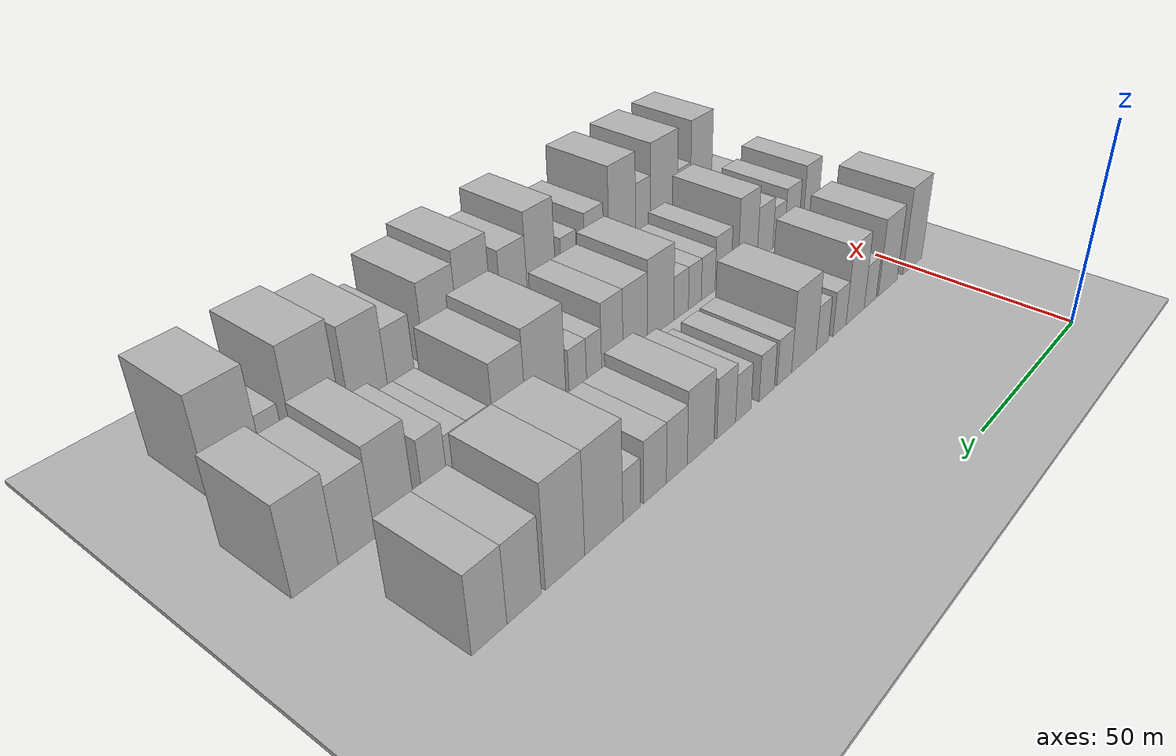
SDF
<sdf version="1.6">
 <world name="default">
  <include><name>ground_plane_1</name><uri>model://HANNAS_ground_plane</uri></include>
  <include>
   <name>ground_plane_2</name>
   <uri>model://HANNAS_ground_plane</uri>
   <pose>100 0 0  0 0 0</pose>
  </include>
  <model name="building_40">
   <static>1</static>
   <pose>50.0000 0.5116 0 0.000000 0.000000 0.000000</pose>
   <link name="link">
    <pose>0 0 12.00 0 0 0</pose>
    <collision name="collision"><geometry><box><size>20.0000 10.1865 24.0000</size></box></geometry></collision>
    <visual name="visual">
     <cast_shadows>0</cast_shadows>
     <geometry><box><size>20.0000 10.1865 24.0000</size></box></geometry>
     <material>
      <script>
       <uri>model://HANNAS_wall/materials/scripts</uri>
       <uri>model://HANNAS_wall/materials/textures</uri>
       <name>vrc/HANNAS_wall</name>
      </script>
     </material>
    </visual>
   </link>
  </model>
  <model name="building_41">
   <static>1</static>
   <pose>50.0000 13.3730 0 0.000000 0.000000 0.000000</pose>
   <link name="link">
    <pose>0 0 10.50 0 0 0</pose>
    <collision name="collision"><geometry><box><size>20.0000 9.5363 21.0000</size></box></geometry></collision>
    <visual name="visual">
     <cast_shadows>0</cast_shadows>
     <geometry><box><size>20.0000 9.5363 21.0000</size></box></geometry>
     <material>
      <script>
       <uri>model://HANNAS_wall/materials/scripts</uri>
       <uri>model://HANNAS_wall/materials/textures</uri>
       <name>vrc/HANNAS_wall</name>
      </script>
     </material>
    </visual>
   </link>
  </model>
  <model name="building_42">
   <static>1</static>
   <pose>50.0000 22.0868 0 0.000000 0.000000 0.000000</pose>
   <link name="link">
    <pose>0 0 6.00 0 0 0</pose>
    <collision name="collision"><geometry><box><size>20.0000 5.8913 12.0000</size></box></geometry></collision>
    <visual name="visual">
     <cast_shadows>0</cast_shadows>
     <geometry><box><size>20.0000 5.8913 12.0000</size></box></geometry>
     <material>
      <script>
       <uri>model://HANNAS_wall/materials/scripts</uri>
       <uri>model://HANNAS_wall/materials/textures</uri>
       <name>vrc/HANNAS_wall</name>
      </script>
     </material>
    </visual>
   </link>
  </model>
  <model name="building_43">
   <static>1</static>
   <pose>50.0000 29.2545 0 0.000000 0.000000 0.000000</pose>
   <link name="link">
    <pose>0 0 10.50 0 0 0</pose>
    <collision name="collision"><geometry><box><size>20.0000 8.4440 21.0000</size></box></geometry></collision>
    <visual name="visual">
     <cast_shadows>0</cast_shadows>
     <geometry><box><size>20.0000 8.4440 21.0000</size></box></geometry>
     <material>
      <script>
       <uri>model://HANNAS_wall/materials/scripts</uri>
       <uri>model://HANNAS_wall/materials/textures</uri>
       <name>vrc/HANNAS_wall</name>
      </script>
     </material>
    </visual>
   </link>
  </model>
  <model name="building_44">
   <static>1</static>
   <pose>50.0000 36.4297 0 0.000000 0.000000 0.000000</pose>
   <link name="link">
    <pose>0 0 6.00 0 0 0</pose>
    <collision name="collision"><geometry><box><size>20.0000 5.9065 12.0000</size></box></geometry></collision>
    <visual name="visual">
     <cast_shadows>0</cast_shadows>
     <geometry><box><size>20.0000 5.9065 12.0000</size></box></geometry>
     <material>
      <script>
       <uri>model://HANNAS_wall/materials/scripts</uri>
       <uri>model://HANNAS_wall/materials/textures</uri>
       <name>vrc/HANNAS_wall</name>
      </script>
     </material>
    </visual>
   </link>
  </model>
  <model name="building_45">
   <static>1</static>
   <pose>50.0000 44.0277 0 0.000000 0.000000 0.000000</pose>
   <link name="link">
    <pose>0 0 6.00 0 0 0</pose>
    <collision name="collision"><geometry><box><size>20.0000 5.2894 12.0000</size></box></geometry></collision>
    <visual name="visual">
     <cast_shadows>0</cast_shadows>
     <geometry><box><size>20.0000 5.2894 12.0000</size></box></geometry>
     <material>
      <script>
       <uri>model://HANNAS_wall/materials/scripts</uri>
       <uri>model://HANNAS_wall/materials/textures</uri>
       <name>vrc/HANNAS_wall</name>
      </script>
     </material>
    </visual>
   </link>
  </model>
  <model name="building_46">
   <static>1</static>
   <pose>50.0000 51.8122 0 0.000000 0.000000 0.000000</pose>
   <link name="link">
    <pose>0 0 10.50 0 0 0</pose>
    <collision name="collision"><geometry><box><size>20.0000 10.2796 21.0000</size></box></geometry></collision>
    <visual name="visual">
     <cast_shadows>0</cast_shadows>
     <geometry><box><size>20.0000 10.2796 21.0000</size></box></geometry>
     <material>
      <script>
       <uri>model://HANNAS_wall/materials/scripts</uri>
       <uri>model://HANNAS_wall/materials/textures</uri>
       <name>vrc/HANNAS_wall</name>
      </script>
     </material>
    </visual>
   </link>
  </model>
  <model name="building_47">
   <static>1</static>
   <pose>50.0000 59.8387 0 0.000000 0.000000 0.000000</pose>
   <link name="link">
    <pose>0 0 6.00 0 0 0</pose>
    <collision name="collision"><geometry><box><size>20.0000 5.7734 12.0000</size></box></geometry></collision>
    <visual name="visual">
     <cast_shadows>0</cast_shadows>
     <geometry><box><size>20.0000 5.7734 12.0000</size></box></geometry>
     <material>
      <script>
       <uri>model://HANNAS_wall/materials/scripts</uri>
       <uri>model://HANNAS_wall/materials/textures</uri>
       <name>vrc/HANNAS_wall</name>
      </script>
     </material>
    </visual>
   </link>
  </model>
  <model name="building_48">
   <static>1</static>
   <pose>50.0000 66.6407 0 0.000000 0.000000 0.000000</pose>
   <link name="link">
    <pose>0 0 6.00 0 0 0</pose>
    <collision name="collision"><geometry><box><size>20.0000 5.8307 12.0000</size></box></geometry></collision>
    <visual name="visual">
     <cast_shadows>0</cast_shadows>
     <geometry><box><size>20.0000 5.8307 12.0000</size></box></geometry>
     <material>
      <script>
       <uri>model://HANNAS_wall/materials/scripts</uri>
       <uri>model://HANNAS_wall/materials/textures</uri>
       <name>vrc/HANNAS_wall</name>
      </script>
     </material>
    </visual>
   </link>
  </model>
  <model name="building_49">
   <static>1</static>
   <pose>50.0000 75.3613 0 0.000000 0.000000 0.000000</pose>
   <link name="link">
    <pose>0 0 6.00 0 0 0</pose>
    <collision name="collision"><geometry><box><size>20.0000 5.6104 12.0000</size></box></geometry></collision>
    <visual name="visual">
     <cast_shadows>0</cast_shadows>
     <geometry><box><size>20.0000 5.6104 12.0000</size></box></geometry>
     <material>
      <script>
       <uri>model://HANNAS_wall/materials/scripts</uri>
       <uri>model://HANNAS_wall/materials/textures</uri>
       <name>vrc/HANNAS_wall</name>
      </script>
     </material>
    </visual>
   </link>
  </model>
  <model name="building_50">
   <static>1</static>
   <pose>50.0000 81.4512 0 0.000000 0.000000 0.000000</pose>
   <link name="link">
    <pose>0 0 7.50 0 0 0</pose>
    <collision name="collision"><geometry><box><size>20.0000 6.5694 15.0000</size></box></geometry></collision>
    <visual name="visual">
     <cast_shadows>0</cast_shadows>
     <geometry><box><size>20.0000 6.5694 15.0000</size></box></geometry>
     <material>
      <script>
       <uri>model://HANNAS_wall/materials/scripts</uri>
       <uri>model://HANNAS_wall/materials/textures</uri>
       <name>vrc/HANNAS_wall</name>
      </script>
     </material>
    </visual>
   </link>
  </model>
  <model name="building_51">
   <static>1</static>
   <pose>50.0000 90.1794 0 0.000000 0.000000 0.000000</pose>
   <link name="link">
    <pose>0 0 9.00 0 0 0</pose>
    <collision name="collision"><geometry><box><size>20.0000 8.8872 18.0000</size></box></geometry></collision>
    <visual name="visual">
     <cast_shadows>0</cast_shadows>
     <geometry><box><size>20.0000 8.8872 18.0000</size></box></geometry>
     <material>
      <script>
       <uri>model://HANNAS_wall/materials/scripts</uri>
       <uri>model://HANNAS_wall/materials/textures</uri>
       <name>vrc/HANNAS_wall</name>
      </script>
     </material>
    </visual>
   </link>
  </model>
  <model name="building_52">
   <static>1</static>
   <pose>50.0000 97.8968 0 0.000000 0.000000 0.000000</pose>
   <link name="link">
    <pose>0 0 7.50 0 0 0</pose>
    <collision name="collision"><geometry><box><size>20.0000 6.5476 15.0000</size></box></geometry></collision>
    <visual name="visual">
     <cast_shadows>0</cast_shadows>
     <geometry><box><size>20.0000 6.5476 15.0000</size></box></geometry>
     <material>
      <script>
       <uri>model://HANNAS_wall/materials/scripts</uri>
       <uri>model://HANNAS_wall/materials/textures</uri>
       <name>vrc/HANNAS_wall</name>
      </script>
     </material>
    </visual>
   </link>
  </model>
  <model name="building_53">
   <static>1</static>
   <pose>50.0000 104.6237 0 0.000000 0.000000 0.000000</pose>
   <link name="link">
    <pose>0 0 7.50 0 0 0</pose>
    <collision name="collision"><geometry><box><size>20.0000 6.9063 15.0000</size></box></geometry></collision>
    <visual name="visual">
     <cast_shadows>0</cast_shadows>
     <geometry><box><size>20.0000 6.9063 15.0000</size></box></geometry>
     <material>
      <script>
       <uri>model://HANNAS_wall/materials/scripts</uri>
       <uri>model://HANNAS_wall/materials/textures</uri>
       <name>vrc/HANNAS_wall</name>
      </script>
     </material>
    </visual>
   </link>
  </model>
  <model name="building_54">
   <static>1</static>
   <pose>50.0000 111.5952 0 0.000000 0.000000 0.000000</pose>
   <link name="link">
    <pose>0 0 6.00 0 0 0</pose>
    <collision name="collision"><geometry><box><size>20.0000 5.0366 12.0000</size></box></geometry></collision>
    <visual name="visual">
     <cast_shadows>0</cast_shadows>
     <geometry><box><size>20.0000 5.0366 12.0000</size></box></geometry>
     <material>
      <script>
       <uri>model://HANNAS_wall/materials/scripts</uri>
       <uri>model://HANNAS_wall/materials/textures</uri>
       <name>vrc/HANNAS_wall</name>
      </script>
     </material>
    </visual>
   </link>
  </model>
  <model name="building_55">
   <static>1</static>
   <pose>50.0000 119.3480 0 0.000000 0.000000 0.000000</pose>
   <link name="link">
    <pose>0 0 12.00 0 0 0</pose>
    <collision name="collision"><geometry><box><size>20.0000 10.4690 24.0000</size></box></geometry></collision>
    <visual name="visual">
     <cast_shadows>0</cast_shadows>
     <geometry><box><size>20.0000 10.4690 24.0000</size></box></geometry>
     <material>
      <script>
       <uri>model://HANNAS_wall/materials/scripts</uri>
       <uri>model://HANNAS_wall/materials/textures</uri>
       <name>vrc/HANNAS_wall</name>
      </script>
     </material>
    </visual>
   </link>
  </model>
  <model name="building_56">
   <static>1</static>
   <pose>50.0000 129.6237 0 0.000000 0.000000 0.000000</pose>
   <link name="link">
    <pose>0 0 12.00 0 0 0</pose>
    <collision name="collision"><geometry><box><size>20.0000 10.0824 24.0000</size></box></geometry></collision>
    <visual name="visual">
     <cast_shadows>0</cast_shadows>
     <geometry><box><size>20.0000 10.0824 24.0000</size></box></geometry>
     <material>
      <script>
       <uri>model://HANNAS_wall/materials/scripts</uri>
       <uri>model://HANNAS_wall/materials/textures</uri>
       <name>vrc/HANNAS_wall</name>
      </script>
     </material>
    </visual>
   </link>
  </model>
  <model name="building_57">
   <static>1</static>
   <pose>50.0000 139.7622 0 0.000000 0.000000 0.000000</pose>
   <link name="link">
    <pose>0 0 9.00 0 0 0</pose>
    <collision name="collision"><geometry><box><size>20.0000 8.1948 18.0000</size></box></geometry></collision>
    <visual name="visual">
     <cast_shadows>0</cast_shadows>
     <geometry><box><size>20.0000 8.1948 18.0000</size></box></geometry>
     <material>
      <script>
       <uri>model://HANNAS_wall/materials/scripts</uri>
       <uri>model://HANNAS_wall/materials/textures</uri>
       <name>vrc/HANNAS_wall</name>
      </script>
     </material>
    </visual>
   </link>
  </model>
  <model name="building_58">
   <static>1</static>
   <pose>50.0000 147.8684 0 0.000000 0.000000 0.000000</pose>
   <link name="link">
    <pose>0 0 9.00 0 0 0</pose>
    <collision name="collision"><geometry><box><size>20.0000 8.0174 18.0000</size></box></geometry></collision>
    <visual name="visual">
     <cast_shadows>0</cast_shadows>
     <geometry><box><size>20.0000 8.0174 18.0000</size></box></geometry>
     <material>
      <script>
       <uri>model://HANNAS_wall/materials/scripts</uri>
       <uri>model://HANNAS_wall/materials/textures</uri>
       <name>vrc/HANNAS_wall</name>
      </script>
     </material>
    </visual>
   </link>
  </model>
  <model name="building_115">
   <static>1</static>
   <pose>82.0000 -4.3898 0 0.000000 0.000000 0.000000</pose>
   <link name="link">
    <pose>0 0 9.00 0 0 0</pose>
    <collision name="collision"><geometry><box><size>20.0000 7.6242 18.0000</size></box></geometry></collision>
    <visual name="visual">
     <cast_shadows>0</cast_shadows>
     <geometry><box><size>20.0000 7.6242 18.0000</size></box></geometry>
     <material>
      <script>
       <uri>model://HANNAS_wall/materials/scripts</uri>
       <uri>model://HANNAS_wall/materials/textures</uri>
       <name>vrc/HANNAS_wall</name>
      </script>
     </material>
    </visual>
   </link>
  </model>
  <model name="building_116">
   <static>1</static>
   <pose>82.0000 4.9558 0 0.000000 0.000000 0.000000</pose>
   <link name="link">
    <pose>0 0 7.50 0 0 0</pose>
    <collision name="collision"><geometry><box><size>20.0000 7.0670 15.0000</size></box></geometry></collision>
    <visual name="visual">
     <cast_shadows>0</cast_shadows>
     <geometry><box><size>20.0000 7.0670 15.0000</size></box></geometry>
     <material>
      <script>
       <uri>model://HANNAS_wall/materials/scripts</uri>
       <uri>model://HANNAS_wall/materials/textures</uri>
       <name>vrc/HANNAS_wall</name>
      </script>
     </material>
    </visual>
   </link>
  </model>
  <model name="building_117">
   <static>1</static>
   <pose>82.0000 11.2498 0 0.000000 0.000000 0.000000</pose>
   <link name="link">
    <pose>0 0 6.00 0 0 0</pose>
    <collision name="collision"><geometry><box><size>20.0000 5.5210 12.0000</size></box></geometry></collision>
    <visual name="visual">
     <cast_shadows>0</cast_shadows>
     <geometry><box><size>20.0000 5.5210 12.0000</size></box></geometry>
     <material>
      <script>
       <uri>model://HANNAS_wall/materials/scripts</uri>
       <uri>model://HANNAS_wall/materials/textures</uri>
       <name>vrc/HANNAS_wall</name>
      </script>
     </material>
    </visual>
   </link>
  </model>
  <model name="building_118">
   <static>1</static>
   <pose>82.0000 17.6462 0 0.000000 0.000000 0.000000</pose>
   <link name="link">
    <pose>0 0 7.50 0 0 0</pose>
    <collision name="collision"><geometry><box><size>20.0000 7.2718 15.0000</size></box></geometry></collision>
    <visual name="visual">
     <cast_shadows>0</cast_shadows>
     <geometry><box><size>20.0000 7.2718 15.0000</size></box></geometry>
     <material>
      <script>
       <uri>model://HANNAS_wall/materials/scripts</uri>
       <uri>model://HANNAS_wall/materials/textures</uri>
       <name>vrc/HANNAS_wall</name>
      </script>
     </material>
    </visual>
   </link>
  </model>
  <model name="building_119">
   <static>1</static>
   <pose>82.0000 25.5388 0 0.000000 0.000000 0.000000</pose>
   <link name="link">
    <pose>0 0 10.50 0 0 0</pose>
    <collision name="collision"><geometry><box><size>20.0000 8.5133 21.0000</size></box></geometry></collision>
    <visual name="visual">
     <cast_shadows>0</cast_shadows>
     <geometry><box><size>20.0000 8.5133 21.0000</size></box></geometry>
     <material>
      <script>
       <uri>model://HANNAS_wall/materials/scripts</uri>
       <uri>model://HANNAS_wall/materials/textures</uri>
       <name>vrc/HANNAS_wall</name>
      </script>
     </material>
    </visual>
   </link>
  </model>
  <model name="building_120">
   <static>1</static>
   <pose>82.0000 36.1445 0 0.000000 0.000000 0.000000</pose>
   <link name="link">
    <pose>0 0 7.50 0 0 0</pose>
    <collision name="collision"><geometry><box><size>20.0000 6.6982 15.0000</size></box></geometry></collision>
    <visual name="visual">
     <cast_shadows>0</cast_shadows>
     <geometry><box><size>20.0000 6.6982 15.0000</size></box></geometry>
     <material>
      <script>
       <uri>model://HANNAS_wall/materials/scripts</uri>
       <uri>model://HANNAS_wall/materials/textures</uri>
       <name>vrc/HANNAS_wall</name>
      </script>
     </material>
    </visual>
   </link>
  </model>
  <model name="building_121">
   <static>1</static>
   <pose>82.0000 42.3215 0 0.000000 0.000000 0.000000</pose>
   <link name="link">
    <pose>0 0 6.00 0 0 0</pose>
    <collision name="collision"><geometry><box><size>20.0000 5.6557 12.0000</size></box></geometry></collision>
    <visual name="visual">
     <cast_shadows>0</cast_shadows>
     <geometry><box><size>20.0000 5.6557 12.0000</size></box></geometry>
     <material>
      <script>
       <uri>model://HANNAS_wall/materials/scripts</uri>
       <uri>model://HANNAS_wall/materials/textures</uri>
       <name>vrc/HANNAS_wall</name>
      </script>
     </material>
    </visual>
   </link>
  </model>
  <model name="building_122">
   <static>1</static>
   <pose>82.0000 47.6949 0 0.000000 0.000000 0.000000</pose>
   <link name="link">
    <pose>0 0 6.00 0 0 0</pose>
    <collision name="collision"><geometry><box><size>20.0000 5.0912 12.0000</size></box></geometry></collision>
    <visual name="visual">
     <cast_shadows>0</cast_shadows>
     <geometry><box><size>20.0000 5.0912 12.0000</size></box></geometry>
     <material>
      <script>
       <uri>model://HANNAS_wall/materials/scripts</uri>
       <uri>model://HANNAS_wall/materials/textures</uri>
       <name>vrc/HANNAS_wall</name>
      </script>
     </material>
    </visual>
   </link>
  </model>
  <model name="building_123">
   <static>1</static>
   <pose>82.0000 53.0800 0 0.000000 0.000000 0.000000</pose>
   <link name="link">
    <pose>0 0 6.00 0 0 0</pose>
    <collision name="collision"><geometry><box><size>20.0000 5.6789 12.0000</size></box></geometry></collision>
    <visual name="visual">
     <cast_shadows>0</cast_shadows>
     <geometry><box><size>20.0000 5.6789 12.0000</size></box></geometry>
     <material>
      <script>
       <uri>model://HANNAS_wall/materials/scripts</uri>
       <uri>model://HANNAS_wall/materials/textures</uri>
       <name>vrc/HANNAS_wall</name>
      </script>
     </material>
    </visual>
   </link>
  </model>
  <model name="building_124">
   <static>1</static>
   <pose>82.0000 60.8159 0 0.000000 0.000000 0.000000</pose>
   <link name="link">
    <pose>0 0 10.50 0 0 0</pose>
    <collision name="collision"><geometry><box><size>20.0000 9.7928 21.0000</size></box></geometry></collision>
    <visual name="visual">
     <cast_shadows>0</cast_shadows>
     <geometry><box><size>20.0000 9.7928 21.0000</size></box></geometry>
     <material>
      <script>
       <uri>model://HANNAS_wall/materials/scripts</uri>
       <uri>model://HANNAS_wall/materials/textures</uri>
       <name>vrc/HANNAS_wall</name>
      </script>
     </material>
    </visual>
   </link>
  </model>
  <model name="building_125">
   <static>1</static>
   <pose>82.0000 70.0214 0 0.000000 0.000000 0.000000</pose>
   <link name="link">
    <pose>0 0 9.00 0 0 0</pose>
    <collision name="collision"><geometry><box><size>20.0000 8.6184 18.0000</size></box></geometry></collision>
    <visual name="visual">
     <cast_shadows>0</cast_shadows>
     <geometry><box><size>20.0000 8.6184 18.0000</size></box></geometry>
     <material>
      <script>
       <uri>model://HANNAS_wall/materials/scripts</uri>
       <uri>model://HANNAS_wall/materials/textures</uri>
       <name>vrc/HANNAS_wall</name>
      </script>
     </material>
    </visual>
   </link>
  </model>
  <model name="building_126">
   <static>1</static>
   <pose>82.0000 77.9327 0 0.000000 0.000000 0.000000</pose>
   <link name="link">
    <pose>0 0 9.00 0 0 0</pose>
    <collision name="collision"><geometry><box><size>20.0000 7.2041 18.0000</size></box></geometry></collision>
    <visual name="visual">
     <cast_shadows>0</cast_shadows>
     <geometry><box><size>20.0000 7.2041 18.0000</size></box></geometry>
     <material>
      <script>
       <uri>model://HANNAS_wall/materials/scripts</uri>
       <uri>model://HANNAS_wall/materials/textures</uri>
       <name>vrc/HANNAS_wall</name>
      </script>
     </material>
    </visual>
   </link>
  </model>
  <model name="building_127">
   <static>1</static>
   <pose>82.0000 84.0101 0 0.000000 0.000000 0.000000</pose>
   <link name="link">
    <pose>0 0 6.00 0 0 0</pose>
    <collision name="collision"><geometry><box><size>20.0000 4.9508 12.0000</size></box></geometry></collision>
    <visual name="visual">
     <cast_shadows>0</cast_shadows>
     <geometry><box><size>20.0000 4.9508 12.0000</size></box></geometry>
     <material>
      <script>
       <uri>model://HANNAS_wall/materials/scripts</uri>
       <uri>model://HANNAS_wall/materials/textures</uri>
       <name>vrc/HANNAS_wall</name>
      </script>
     </material>
    </visual>
   </link>
  </model>
  <model name="building_128">
   <static>1</static>
   <pose>82.0000 89.2519 0 0.000000 0.000000 0.000000</pose>
   <link name="link">
    <pose>0 0 6.00 0 0 0</pose>
    <collision name="collision"><geometry><box><size>20.0000 5.5328 12.0000</size></box></geometry></collision>
    <visual name="visual">
     <cast_shadows>0</cast_shadows>
     <geometry><box><size>20.0000 5.5328 12.0000</size></box></geometry>
     <material>
      <script>
       <uri>model://HANNAS_wall/materials/scripts</uri>
       <uri>model://HANNAS_wall/materials/textures</uri>
       <name>vrc/HANNAS_wall</name>
      </script>
     </material>
    </visual>
   </link>
  </model>
  <model name="building_129">
   <static>1</static>
   <pose>82.0000 98.9196 0 0.000000 0.000000 0.000000</pose>
   <link name="link">
    <pose>0 0 12.00 0 0 0</pose>
    <collision name="collision"><geometry><box><size>20.0000 11.8027 24.0000</size></box></geometry></collision>
    <visual name="visual">
     <cast_shadows>0</cast_shadows>
     <geometry><box><size>20.0000 11.8027 24.0000</size></box></geometry>
     <material>
      <script>
       <uri>model://HANNAS_wall/materials/scripts</uri>
       <uri>model://HANNAS_wall/materials/textures</uri>
       <name>vrc/HANNAS_wall</name>
      </script>
     </material>
    </visual>
   </link>
  </model>
  <model name="building_130">
   <static>1</static>
   <pose>82.0000 109.2888 0 0.000000 0.000000 0.000000</pose>
   <link name="link">
    <pose>0 0 10.50 0 0 0</pose>
    <collision name="collision"><geometry><box><size>20.0000 8.9356 21.0000</size></box></geometry></collision>
    <visual name="visual">
     <cast_shadows>0</cast_shadows>
     <geometry><box><size>20.0000 8.9356 21.0000</size></box></geometry>
     <material>
      <script>
       <uri>model://HANNAS_wall/materials/scripts</uri>
       <uri>model://HANNAS_wall/materials/textures</uri>
       <name>vrc/HANNAS_wall</name>
      </script>
     </material>
    </visual>
   </link>
  </model>
  <model name="building_131">
   <static>1</static>
   <pose>82.0000 117.5836 0 0.000000 0.000000 0.000000</pose>
   <link name="link">
    <pose>0 0 6.00 0 0 0</pose>
    <collision name="collision"><geometry><box><size>20.0000 5.6541 12.0000</size></box></geometry></collision>
    <visual name="visual">
     <cast_shadows>0</cast_shadows>
     <geometry><box><size>20.0000 5.6541 12.0000</size></box></geometry>
     <material>
      <script>
       <uri>model://HANNAS_wall/materials/scripts</uri>
       <uri>model://HANNAS_wall/materials/textures</uri>
       <name>vrc/HANNAS_wall</name>
      </script>
     </material>
    </visual>
   </link>
  </model>
  <model name="building_132">
   <static>1</static>
   <pose>82.0000 123.3682 0 0.000000 0.000000 0.000000</pose>
   <link name="link">
    <pose>0 0 6.00 0 0 0</pose>
    <collision name="collision"><geometry><box><size>20.0000 5.9150 12.0000</size></box></geometry></collision>
    <visual name="visual">
     <cast_shadows>0</cast_shadows>
     <geometry><box><size>20.0000 5.9150 12.0000</size></box></geometry>
     <material>
      <script>
       <uri>model://HANNAS_wall/materials/scripts</uri>
       <uri>model://HANNAS_wall/materials/textures</uri>
       <name>vrc/HANNAS_wall</name>
      </script>
     </material>
    </visual>
   </link>
  </model>
  <model name="building_133">
   <static>1</static>
   <pose>82.0000 129.4067 0 0.000000 0.000000 0.000000</pose>
   <link name="link">
    <pose>0 0 7.50 0 0 0</pose>
    <collision name="collision"><geometry><box><size>20.0000 6.1619 15.0000</size></box></geometry></collision>
    <visual name="visual">
     <cast_shadows>0</cast_shadows>
     <geometry><box><size>20.0000 6.1619 15.0000</size></box></geometry>
     <material>
      <script>
       <uri>model://HANNAS_wall/materials/scripts</uri>
       <uri>model://HANNAS_wall/materials/textures</uri>
       <name>vrc/HANNAS_wall</name>
      </script>
     </material>
    </visual>
   </link>
  </model>
  <model name="building_134">
   <static>1</static>
   <pose>82.0000 139.1286 0 0.000000 0.000000 0.000000</pose>
   <link name="link">
    <pose>0 0 10.50 0 0 0</pose>
    <collision name="collision"><geometry><box><size>20.0000 9.2820 21.0000</size></box></geometry></collision>
    <visual name="visual">
     <cast_shadows>0</cast_shadows>
     <geometry><box><size>20.0000 9.2820 21.0000</size></box></geometry>
     <material>
      <script>
       <uri>model://HANNAS_wall/materials/scripts</uri>
       <uri>model://HANNAS_wall/materials/textures</uri>
       <name>vrc/HANNAS_wall</name>
      </script>
     </material>
    </visual>
   </link>
  </model>
  <model name="building_135">
   <static>1</static>
   <pose>82.0000 147.8947 0 0.000000 0.000000 0.000000</pose>
   <link name="link">
    <pose>0 0 9.00 0 0 0</pose>
    <collision name="collision"><geometry><box><size>20.0000 8.2501 18.0000</size></box></geometry></collision>
    <visual name="visual">
     <cast_shadows>0</cast_shadows>
     <geometry><box><size>20.0000 8.2501 18.0000</size></box></geometry>
     <material>
      <script>
       <uri>model://HANNAS_wall/materials/scripts</uri>
       <uri>model://HANNAS_wall/materials/textures</uri>
       <name>vrc/HANNAS_wall</name>
      </script>
     </material>
    </visual>
   </link>
  </model>
  <model name="building_136">
   <static>1</static>
   <pose>82.0000 156.8533 0 0.000000 0.000000 0.000000</pose>
   <link name="link">
    <pose>0 0 10.50 0 0 0</pose>
    <collision name="collision"><geometry><box><size>20.0000 9.6671 21.0000</size></box></geometry></collision>
    <visual name="visual">
     <cast_shadows>0</cast_shadows>
     <geometry><box><size>20.0000 9.6671 21.0000</size></box></geometry>
     <material>
      <script>
       <uri>model://HANNAS_wall/materials/scripts</uri>
       <uri>model://HANNAS_wall/materials/textures</uri>
       <name>vrc/HANNAS_wall</name>
      </script>
     </material>
    </visual>
   </link>
  </model>
  <model name="building_192">
   <static>1</static>
   <pose>114.0000 0.4749 0 0.000000 0.000000 0.000000</pose>
   <link name="link">
    <pose>0 0 12.00 0 0 0</pose>
    <collision name="collision"><geometry><box><size>20.0000 10.0655 24.0000</size></box></geometry></collision>
    <visual name="visual">
     <cast_shadows>0</cast_shadows>
     <geometry><box><size>20.0000 10.0655 24.0000</size></box></geometry>
     <material>
      <script>
       <uri>model://HANNAS_wall/materials/scripts</uri>
       <uri>model://HANNAS_wall/materials/textures</uri>
       <name>vrc/HANNAS_wall</name>
      </script>
     </material>
    </visual>
   </link>
  </model>
  <model name="building_193">
   <static>1</static>
   <pose>114.0000 8.4350 0 0.000000 0.000000 0.000000</pose>
   <link name="link">
    <pose>0 0 6.00 0 0 0</pose>
    <collision name="collision"><geometry><box><size>20.0000 5.8548 12.0000</size></box></geometry></collision>
    <visual name="visual">
     <cast_shadows>0</cast_shadows>
     <geometry><box><size>20.0000 5.8548 12.0000</size></box></geometry>
     <material>
      <script>
       <uri>model://HANNAS_wall/materials/scripts</uri>
       <uri>model://HANNAS_wall/materials/textures</uri>
       <name>vrc/HANNAS_wall</name>
      </script>
     </material>
    </visual>
   </link>
  </model>
  <model name="building_194">
   <static>1</static>
   <pose>114.0000 17.2944 0 0.000000 0.000000 0.000000</pose>
   <link name="link">
    <pose>0 0 12.00 0 0 0</pose>
    <collision name="collision"><geometry><box><size>20.0000 11.8640 24.0000</size></box></geometry></collision>
    <visual name="visual">
     <cast_shadows>0</cast_shadows>
     <geometry><box><size>20.0000 11.8640 24.0000</size></box></geometry>
     <material>
      <script>
       <uri>model://HANNAS_wall/materials/scripts</uri>
       <uri>model://HANNAS_wall/materials/textures</uri>
       <name>vrc/HANNAS_wall</name>
      </script>
     </material>
    </visual>
   </link>
  </model>
  <model name="building_195">
   <static>1</static>
   <pose>114.0000 26.3417 0 0.000000 0.000000 0.000000</pose>
   <link name="link">
    <pose>0 0 7.50 0 0 0</pose>
    <collision name="collision"><geometry><box><size>20.0000 6.2306 15.0000</size></box></geometry></collision>
    <visual name="visual">
     <cast_shadows>0</cast_shadows>
     <geometry><box><size>20.0000 6.2306 15.0000</size></box></geometry>
     <material>
      <script>
       <uri>model://HANNAS_wall/materials/scripts</uri>
       <uri>model://HANNAS_wall/materials/textures</uri>
       <name>vrc/HANNAS_wall</name>
      </script>
     </material>
    </visual>
   </link>
  </model>
  <model name="building_196">
   <static>1</static>
   <pose>114.0000 34.8620 0 0.000000 0.000000 0.000000</pose>
   <link name="link">
    <pose>0 0 12.00 0 0 0</pose>
    <collision name="collision"><geometry><box><size>20.0000 10.8100 24.0000</size></box></geometry></collision>
    <visual name="visual">
     <cast_shadows>0</cast_shadows>
     <geometry><box><size>20.0000 10.8100 24.0000</size></box></geometry>
     <material>
      <script>
       <uri>model://HANNAS_wall/materials/scripts</uri>
       <uri>model://HANNAS_wall/materials/textures</uri>
       <name>vrc/HANNAS_wall</name>
      </script>
     </material>
    </visual>
   </link>
  </model>
  <model name="building_197">
   <static>1</static>
   <pose>114.0000 45.8983 0 0.000000 0.000000 0.000000</pose>
   <link name="link">
    <pose>0 0 7.50 0 0 0</pose>
    <collision name="collision"><geometry><box><size>20.0000 7.2626 15.0000</size></box></geometry></collision>
    <visual name="visual">
     <cast_shadows>0</cast_shadows>
     <geometry><box><size>20.0000 7.2626 15.0000</size></box></geometry>
     <material>
      <script>
       <uri>model://HANNAS_wall/materials/scripts</uri>
       <uri>model://HANNAS_wall/materials/textures</uri>
       <name>vrc/HANNAS_wall</name>
      </script>
     </material>
    </visual>
   </link>
  </model>
  <model name="building_198">
   <static>1</static>
   <pose>114.0000 55.3966 0 0.000000 0.000000 0.000000</pose>
   <link name="link">
    <pose>0 0 6.00 0 0 0</pose>
    <collision name="collision"><geometry><box><size>20.0000 5.7340 12.0000</size></box></geometry></collision>
    <visual name="visual">
     <cast_shadows>0</cast_shadows>
     <geometry><box><size>20.0000 5.7340 12.0000</size></box></geometry>
     <material>
      <script>
       <uri>model://HANNAS_wall/materials/scripts</uri>
       <uri>model://HANNAS_wall/materials/textures</uri>
       <name>vrc/HANNAS_wall</name>
      </script>
     </material>
    </visual>
   </link>
  </model>
  <model name="building_199">
   <static>1</static>
   <pose>114.0000 65.1943 0 0.000000 0.000000 0.000000</pose>
   <link name="link">
    <pose>0 0 12.00 0 0 0</pose>
    <collision name="collision"><geometry><box><size>20.0000 9.8614 24.0000</size></box></geometry></collision>
    <visual name="visual">
     <cast_shadows>0</cast_shadows>
     <geometry><box><size>20.0000 9.8614 24.0000</size></box></geometry>
     <material>
      <script>
       <uri>model://HANNAS_wall/materials/scripts</uri>
       <uri>model://HANNAS_wall/materials/textures</uri>
       <name>vrc/HANNAS_wall</name>
      </script>
     </material>
    </visual>
   </link>
  </model>
  <model name="building_200">
   <static>1</static>
   <pose>114.0000 74.5154 0 0.000000 0.000000 0.000000</pose>
   <link name="link">
    <pose>0 0 9.00 0 0 0</pose>
    <collision name="collision"><geometry><box><size>20.0000 8.7806 18.0000</size></box></geometry></collision>
    <visual name="visual">
     <cast_shadows>0</cast_shadows>
     <geometry><box><size>20.0000 8.7806 18.0000</size></box></geometry>
     <material>
      <script>
       <uri>model://HANNAS_wall/materials/scripts</uri>
       <uri>model://HANNAS_wall/materials/textures</uri>
       <name>vrc/HANNAS_wall</name>
      </script>
     </material>
    </visual>
   </link>
  </model>
  <model name="building_201">
   <static>1</static>
   <pose>114.0000 87.1027 0 0.000000 0.000000 0.000000</pose>
   <link name="link">
    <pose>0 0 12.00 0 0 0</pose>
    <collision name="collision"><geometry><box><size>20.0000 10.3941 24.0000</size></box></geometry></collision>
    <visual name="visual">
     <cast_shadows>0</cast_shadows>
     <geometry><box><size>20.0000 10.3941 24.0000</size></box></geometry>
     <material>
      <script>
       <uri>model://HANNAS_wall/materials/scripts</uri>
       <uri>model://HANNAS_wall/materials/textures</uri>
       <name>vrc/HANNAS_wall</name>
      </script>
     </material>
    </visual>
   </link>
  </model>
  <model name="building_202">
   <static>1</static>
   <pose>114.0000 97.4133 0 0.000000 0.000000 0.000000</pose>
   <link name="link">
    <pose>0 0 10.50 0 0 0</pose>
    <collision name="collision"><geometry><box><size>20.0000 10.2273 21.0000</size></box></geometry></collision>
    <visual name="visual">
     <cast_shadows>0</cast_shadows>
     <geometry><box><size>20.0000 10.2273 21.0000</size></box></geometry>
     <material>
      <script>
       <uri>model://HANNAS_wall/materials/scripts</uri>
       <uri>model://HANNAS_wall/materials/textures</uri>
       <name>vrc/HANNAS_wall</name>
      </script>
     </material>
    </visual>
   </link>
  </model>
  <model name="building_203">
   <static>1</static>
   <pose>114.0000 109.2241 0 0.000000 0.000000 0.000000</pose>
   <link name="link">
    <pose>0 0 7.50 0 0 0</pose>
    <collision name="collision"><geometry><box><size>20.0000 7.3943 15.0000</size></box></geometry></collision>
    <visual name="visual">
     <cast_shadows>0</cast_shadows>
     <geometry><box><size>20.0000 7.3943 15.0000</size></box></geometry>
     <material>
      <script>
       <uri>model://HANNAS_wall/materials/scripts</uri>
       <uri>model://HANNAS_wall/materials/textures</uri>
       <name>vrc/HANNAS_wall</name>
      </script>
     </material>
    </visual>
   </link>
  </model>
  <model name="building_204">
   <static>1</static>
   <pose>114.0000 117.9921 0 0.000000 0.000000 0.000000</pose>
   <link name="link">
    <pose>0 0 10.50 0 0 0</pose>
    <collision name="collision"><geometry><box><size>20.0000 10.1416 21.0000</size></box></geometry></collision>
    <visual name="visual">
     <cast_shadows>0</cast_shadows>
     <geometry><box><size>20.0000 10.1416 21.0000</size></box></geometry>
     <material>
      <script>
       <uri>model://HANNAS_wall/materials/scripts</uri>
       <uri>model://HANNAS_wall/materials/textures</uri>
       <name>vrc/HANNAS_wall</name>
      </script>
     </material>
    </visual>
   </link>
  </model>
  <model name="building_205">
   <static>1</static>
   <pose>114.0000 130.8657 0 0.000000 0.000000 0.000000</pose>
   <link name="link">
    <pose>0 0 12.00 0 0 0</pose>
    <collision name="collision"><geometry><box><size>20.0000 11.6056 24.0000</size></box></geometry></collision>
    <visual name="visual">
     <cast_shadows>0</cast_shadows>
     <geometry><box><size>20.0000 11.6056 24.0000</size></box></geometry>
     <material>
      <script>
       <uri>model://HANNAS_wall/materials/scripts</uri>
       <uri>model://HANNAS_wall/materials/textures</uri>
       <name>vrc/HANNAS_wall</name>
      </script>
     </material>
    </visual>
   </link>
  </model>
  <model name="building_206">
   <static>1</static>
   <pose>114.0000 141.2192 0 0.000000 0.000000 0.000000</pose>
   <link name="link">
    <pose>0 0 6.00 0 0 0</pose>
    <collision name="collision"><geometry><box><size>20.0000 5.1014 12.0000</size></box></geometry></collision>
    <visual name="visual">
     <cast_shadows>0</cast_shadows>
     <geometry><box><size>20.0000 5.1014 12.0000</size></box></geometry>
     <material>
      <script>
       <uri>model://HANNAS_wall/materials/scripts</uri>
       <uri>model://HANNAS_wall/materials/textures</uri>
       <name>vrc/HANNAS_wall</name>
      </script>
     </material>
    </visual>
   </link>
  </model>
  <model name="building_207">
   <static>1</static>
   <pose>114.0000 149.7264 0 0.000000 0.000000 0.000000</pose>
   <link name="link">
    <pose>0 0 12.00 0 0 0</pose>
    <collision name="collision"><geometry><box><size>20.0000 11.9129 24.0000</size></box></geometry></collision>
    <visual name="visual">
     <cast_shadows>0</cast_shadows>
     <geometry><box><size>20.0000 11.9129 24.0000</size></box></geometry>
     <material>
      <script>
       <uri>model://HANNAS_wall/materials/scripts</uri>
       <uri>model://HANNAS_wall/materials/textures</uri>
       <name>vrc/HANNAS_wall</name>
      </script>
     </material>
    </visual>
   </link>
  </model>
 </world>
</sdf>
